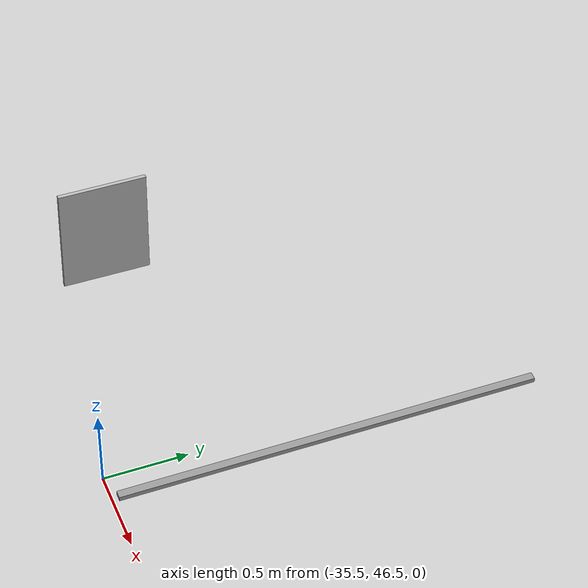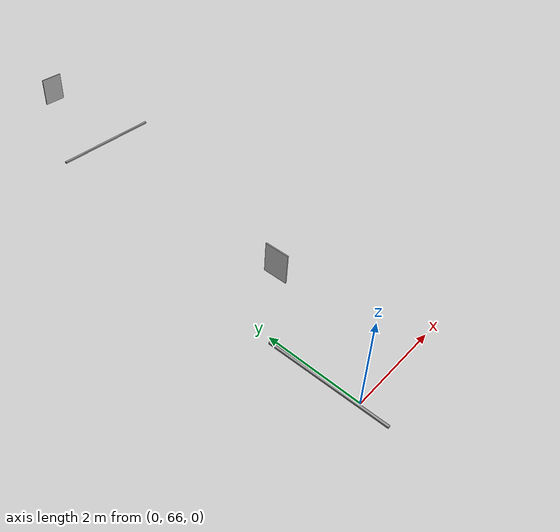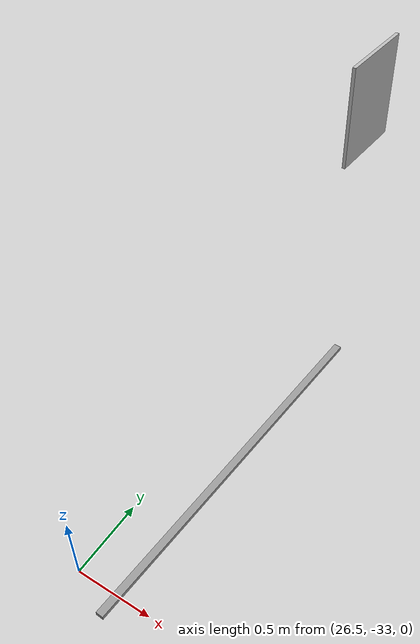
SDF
<sdf version="1.7">
 <world name="default">
  <light name="sun" type="directional">
   <pose>0 0 10 0 -0 0</pose>
   <diffuse>0.8 0.8 0.8 1</diffuse>
   <specular>0.2 0.2 0.2 1</specular>
   <attenuation>
    <range>1000</range>
    <constant>0.9</constant>
    <linear>0.01</linear>
    <quadratic>0.001</quadratic>
   </attenuation>
   <direction>-0.5 0.1 -0.9</direction>
   <spot><inner_angle>0</inner_angle><outer_angle>0</outer_angle><falloff>0</falloff></spot>
  </light>
  <model name="ground_plane">
   <static>1</static>
   <link name="link">
    <collision name="collision">
     <geometry><plane><normal>0 0 1</normal><size>100 100</size></plane></geometry>
     <surface><friction><ode><mu>100</mu><mu2>50</mu2></ode></friction></surface>
    </collision>
    <visual name="visual">
     <cast_shadows>0</cast_shadows>
     <geometry><plane><normal>0 0 1</normal><size>100 100</size></plane></geometry>
     <material>
      <script><uri>file://media/materials/scripts/gazebo.material</uri><name>Gazebo/Grey</name></script>
     </material>
    </visual>
   </link>
  </model>
  <gravity>0 0 -9.8</gravity>
  <magnetic_field>6e-06 2.3e-05 -4.2e-05</magnetic_field>
  <atmosphere type="adiabatic"/>
  <physics type="ode">
   <max_step_size>0.001</max_step_size>
   <real_time_factor>1</real_time_factor>
   <real_time_update_rate>1000</real_time_update_rate>
  </physics>
  <scene><ambient>0.4 0.4 0.4 1</ambient><background>0.7 0.7 0.7 1</background><shadows>1</shadows></scene>
  <audio><device>default</device></audio>
  <spherical_coordinates>
   <surface_model>EARTH_WGS84</surface_model>
   <latitude_deg>0</latitude_deg>
   <longitude_deg>0</longitude_deg>
   <elevation>0</elevation>
   <heading_deg>0</heading_deg>
  </spherical_coordinates>
  <model name="sign_board_turn">
   <link name="link_0">
    <inertial>
     <mass>1</mass>
     <inertia>
      <ixx>0.166667</ixx>
      <ixy>0</ixy>
      <ixz>0</ixz>
      <iyy>0.166667</iyy>
      <iyz>0</iyz>
      <izz>0.166667</izz>
     </inertia>
    </inertial>
    <pose>-0.022706 -0.007463 0 1.5708 -0.00111 1.56593</pose>
    <visual name="visual">
     <geometry><mesh><uri>model://sign_board_turn/meshes/sign_stand.obj</uri><scale>1 1 1</scale></mesh></geometry>
     <material>
      <lighting>1</lighting>
      <script><uri>file://media/materials/scripts/gazebo.material</uri><name>Gazebo/Grey</name></script>
      <shader type="pixel"/>
      <emissive>0 0 0 1</emissive>
     </material>
    </visual>
    <collision name="collision">
     <geometry><mesh><uri>model://sign_board_turn/meshes/sign_stand.obj</uri><scale>1 1 1</scale></mesh></geometry>
     <surface>
      <friction>
       <ode><mu>1</mu><mu2>1</mu2><fdir1>0 0 0</fdir1><slip1>0</slip1><slip2>0</slip2></ode>
       <torsional>
        <coefficient>1</coefficient>
        <patch_radius>0</patch_radius>
        <surface_radius>0</surface_radius>
        <use_patch_radius>1</use_patch_radius>
        <ode><slip>0</slip></ode>
       </torsional>
      </friction>
      <bounce><restitution_coefficient>0</restitution_coefficient><threshold>1e+06</threshold></bounce>
      <contact>
       <collide_without_contact>0</collide_without_contact>
       <collide_without_contact_bitmask>1</collide_without_contact_bitmask>
       <collide_bitmask>1</collide_bitmask>
       <ode>
        <soft_cfm>0</soft_cfm>
        <soft_erp>0.2</soft_erp>
        <kp>1e+13</kp>
        <kd>1</kd>
        <max_vel>0.01</max_vel>
        <min_depth>0</min_depth>
       </ode>
       <bullet>
        <split_impulse>1</split_impulse>
        <split_impulse_penetration_threshold>-0.01</split_impulse_penetration_threshold>
        <soft_cfm>0</soft_cfm>
        <soft_erp>0.2</soft_erp>
        <kp>1e+13</kp>
        <kd>1</kd>
       </bullet>
      </contact>
     </surface>
    </collision>
   </link>
   <link name="link_1">
    <inertial>
     <mass>1</mass>
     <inertia>
      <ixx>0.166667</ixx>
      <ixy>0</ixy>
      <ixz>0</ixz>
      <iyy>0.166667</iyy>
      <iyz>0</iyz>
      <izz>0.166667</izz>
     </inertia>
    </inertial>
    <pose>0.022706 0.007463 2 -0 1.55484 3.14</pose>
    <visual name="visual">
     <geometry><mesh><uri>model://sign_board_turn/meshes/sign_board.obj</uri><scale>1 1 1</scale></mesh></geometry>
     <material>
      <script>
       <uri>model://sign_board_turn/materials/scripts</uri>
       <uri>model://sign_board_turn/materials/textures</uri>
       <name>sign_board_turn/Diffuse</name>
      </script>
     </material>
    </visual>
    <collision name="collision">
     <geometry><mesh><uri>model://sign_board_turn/meshes/sign_board.obj</uri><scale>1 1 1</scale></mesh></geometry>
     <surface>
      <friction>
       <ode><mu>1</mu><mu2>1</mu2><fdir1>0 0 0</fdir1><slip1>0</slip1><slip2>0</slip2></ode>
       <torsional>
        <coefficient>1</coefficient>
        <patch_radius>0</patch_radius>
        <surface_radius>0</surface_radius>
        <use_patch_radius>1</use_patch_radius>
        <ode><slip>0</slip></ode>
       </torsional>
      </friction>
      <bounce><restitution_coefficient>0</restitution_coefficient><threshold>1e+06</threshold></bounce>
      <contact>
       <collide_without_contact>0</collide_without_contact>
       <collide_without_contact_bitmask>1</collide_without_contact_bitmask>
       <collide_bitmask>1</collide_bitmask>
       <ode>
        <soft_cfm>0</soft_cfm>
        <soft_erp>0.2</soft_erp>
        <kp>1e+13</kp>
        <kd>1</kd>
        <max_vel>0.01</max_vel>
        <min_depth>0</min_depth>
       </ode>
       <bullet>
        <split_impulse>1</split_impulse>
        <split_impulse_penetration_threshold>-0.01</split_impulse_penetration_threshold>
        <soft_cfm>0</soft_cfm>
        <soft_erp>0.2</soft_erp>
        <kp>1e+13</kp>
        <kd>1</kd>
       </bullet>
      </contact>
     </surface>
    </collision>
   </link>
   <joint name="link_0_JOINT_0" type="fixed">
    <parent>link_0</parent>
    <child>link_1</child>
    <physics>
     <ode><limit><cfm>0</cfm><erp>0.2</erp></limit><suspension><cfm>0</cfm><erp>0.2</erp></suspension></ode>
    </physics>
   </joint>
   <static>1</static>
   <pose>-0.074487 67.8951 -0 0 0 -1.54827</pose>
  </model>
  <model name="sign_board_30">
   <link name="link_0">
    <inertial>
     <mass>1</mass>
     <inertia>
      <ixx>0.166667</ixx>
      <ixy>0</ixy>
      <ixz>0</ixz>
      <iyy>0.166667</iyy>
      <iyz>0</iyz>
      <izz>0.166667</izz>
     </inertia>
    </inertial>
    <pose>-0.022706 -0.007463 0 1.5708 -0.00111 1.56593</pose>
    <visual name="visual">
     <geometry><mesh><uri>model://sign_board_30/meshes/sign_stand.obj</uri><scale>1 1 1</scale></mesh></geometry>
     <material>
      <lighting>1</lighting>
      <script><uri>file://media/materials/scripts/gazebo.material</uri><name>Gazebo/Grey</name></script>
      <shader type="pixel"/>
      <emissive>0 0 0 1</emissive>
     </material>
    </visual>
    <collision name="collision">
     <geometry><mesh><uri>model://sign_board_30/meshes/sign_stand.obj</uri><scale>1 1 1</scale></mesh></geometry>
     <surface>
      <friction>
       <ode><mu>1</mu><mu2>1</mu2><fdir1>0 0 0</fdir1><slip1>0</slip1><slip2>0</slip2></ode>
       <torsional>
        <coefficient>1</coefficient>
        <patch_radius>0</patch_radius>
        <surface_radius>0</surface_radius>
        <use_patch_radius>1</use_patch_radius>
        <ode><slip>0</slip></ode>
       </torsional>
      </friction>
      <bounce><restitution_coefficient>0</restitution_coefficient><threshold>1e+06</threshold></bounce>
      <contact>
       <collide_without_contact>0</collide_without_contact>
       <collide_without_contact_bitmask>1</collide_without_contact_bitmask>
       <collide_bitmask>1</collide_bitmask>
       <ode>
        <soft_cfm>0</soft_cfm>
        <soft_erp>0.2</soft_erp>
        <kp>1e+13</kp>
        <kd>1</kd>
        <max_vel>0.01</max_vel>
        <min_depth>0</min_depth>
       </ode>
       <bullet>
        <split_impulse>1</split_impulse>
        <split_impulse_penetration_threshold>-0.01</split_impulse_penetration_threshold>
        <soft_cfm>0</soft_cfm>
        <soft_erp>0.2</soft_erp>
        <kp>1e+13</kp>
        <kd>1</kd>
       </bullet>
      </contact>
     </surface>
    </collision>
   </link>
   <link name="link_1">
    <inertial>
     <mass>1</mass>
     <inertia>
      <ixx>0.166667</ixx>
      <ixy>0</ixy>
      <ixz>0</ixz>
      <iyy>0.166667</iyy>
      <iyz>0</iyz>
      <izz>0.166667</izz>
     </inertia>
    </inertial>
    <pose>0.022706 0.007463 2 -0 1.55484 3.14</pose>
    <visual name="visual">
     <geometry><mesh><uri>model://sign_board_30/meshes/sign_board.obj</uri><scale>1 1 1</scale></mesh></geometry>
     <material>
      <script>
       <uri>model://sign_board_30/materials/scripts</uri>
       <uri>model://sign_board_30/materials/textures</uri>
       <name>sign_board_30/Diffuse</name>
      </script>
     </material>
    </visual>
    <collision name="collision">
     <geometry><mesh><uri>model://sign_board_30/meshes/sign_board.obj</uri><scale>1 1 1</scale></mesh></geometry>
     <surface>
      <friction>
       <ode><mu>1</mu><mu2>1</mu2><fdir1>0 0 0</fdir1><slip1>0</slip1><slip2>0</slip2></ode>
       <torsional>
        <coefficient>1</coefficient>
        <patch_radius>0</patch_radius>
        <surface_radius>0</surface_radius>
        <use_patch_radius>1</use_patch_radius>
        <ode><slip>0</slip></ode>
       </torsional>
      </friction>
      <bounce><restitution_coefficient>0</restitution_coefficient><threshold>1e+06</threshold></bounce>
      <contact>
       <collide_without_contact>0</collide_without_contact>
       <collide_without_contact_bitmask>1</collide_without_contact_bitmask>
       <collide_bitmask>1</collide_bitmask>
       <ode>
        <soft_cfm>0</soft_cfm>
        <soft_erp>0.2</soft_erp>
        <kp>1e+13</kp>
        <kd>1</kd>
        <max_vel>0.01</max_vel>
        <min_depth>0</min_depth>
       </ode>
       <bullet>
        <split_impulse>1</split_impulse>
        <split_impulse_penetration_threshold>-0.01</split_impulse_penetration_threshold>
        <soft_cfm>0</soft_cfm>
        <soft_erp>0.2</soft_erp>
        <kp>1e+13</kp>
        <kd>1</kd>
       </bullet>
      </contact>
     </surface>
    </collision>
   </link>
   <joint name="link_0_JOINT_0" type="fixed">
    <parent>link_0</parent>
    <child>link_1</child>
    <physics>
     <ode><limit><cfm>0</cfm><erp>0.2</erp></limit><suspension><cfm>0</cfm><erp>0.2</erp></suspension></ode>
    </physics>
   </joint>
   <static>1</static>
   <pose>-35.3507 46.5593 0 0 -0 1.57439</pose>
  </model>
  <model name="sign_board_60">
   <link name="link_0">
    <inertial>
     <mass>1</mass>
     <inertia>
      <ixx>0.166667</ixx>
      <ixy>0</ixy>
      <ixz>0</ixz>
      <iyy>0.166667</iyy>
      <iyz>0</iyz>
      <izz>0.166667</izz>
     </inertia>
    </inertial>
    <pose>-0.022706 -0.007463 0 1.5708 -0.00111 1.56593</pose>
    <visual name="visual">
     <geometry><mesh><uri>model://sign_board_60/meshes/sign_stand.obj</uri><scale>1 1 1</scale></mesh></geometry>
     <material>
      <lighting>1</lighting>
      <script><uri>file://media/materials/scripts/gazebo.material</uri><name>Gazebo/Grey</name></script>
      <shader type="pixel"/>
      <emissive>0 0 0 1</emissive>
     </material>
    </visual>
    <collision name="collision">
     <geometry><mesh><uri>model://sign_board_60/meshes/sign_stand.obj</uri><scale>1 1 1</scale></mesh></geometry>
     <surface>
      <friction>
       <ode><mu>1</mu><mu2>1</mu2><fdir1>0 0 0</fdir1><slip1>0</slip1><slip2>0</slip2></ode>
       <torsional>
        <coefficient>1</coefficient>
        <patch_radius>0</patch_radius>
        <surface_radius>0</surface_radius>
        <use_patch_radius>1</use_patch_radius>
        <ode><slip>0</slip></ode>
       </torsional>
      </friction>
      <bounce><restitution_coefficient>0</restitution_coefficient><threshold>1e+06</threshold></bounce>
      <contact>
       <collide_without_contact>0</collide_without_contact>
       <collide_without_contact_bitmask>1</collide_without_contact_bitmask>
       <collide_bitmask>1</collide_bitmask>
       <ode>
        <soft_cfm>0</soft_cfm>
        <soft_erp>0.2</soft_erp>
        <kp>1e+13</kp>
        <kd>1</kd>
        <max_vel>0.01</max_vel>
        <min_depth>0</min_depth>
       </ode>
       <bullet>
        <split_impulse>1</split_impulse>
        <split_impulse_penetration_threshold>-0.01</split_impulse_penetration_threshold>
        <soft_cfm>0</soft_cfm>
        <soft_erp>0.2</soft_erp>
        <kp>1e+13</kp>
        <kd>1</kd>
       </bullet>
      </contact>
     </surface>
    </collision>
   </link>
   <link name="link_1">
    <inertial>
     <mass>1</mass>
     <inertia>
      <ixx>0.166667</ixx>
      <ixy>0</ixy>
      <ixz>0</ixz>
      <iyy>0.166667</iyy>
      <iyz>0</iyz>
      <izz>0.166667</izz>
     </inertia>
    </inertial>
    <pose>0.022706 0.007463 2 -0 1.55484 3.14</pose>
    <visual name="visual">
     <geometry><mesh><uri>model://sign_board_60/meshes/sign_board.obj</uri><scale>1 1 1</scale></mesh></geometry>
     <material>
      <script>
       <uri>model://sign_board_60/materials/scripts</uri>
       <uri>model://sign_board_60/materials/textures</uri>
       <name>sign_board_60/Diffuse</name>
      </script>
     </material>
    </visual>
    <collision name="collision">
     <geometry><mesh><uri>model://sign_board_60/meshes/sign_board.obj</uri><scale>1 1 1</scale></mesh></geometry>
     <surface>
      <friction>
       <ode><mu>1</mu><mu2>1</mu2><fdir1>0 0 0</fdir1><slip1>0</slip1><slip2>0</slip2></ode>
       <torsional>
        <coefficient>1</coefficient>
        <patch_radius>0</patch_radius>
        <surface_radius>0</surface_radius>
        <use_patch_radius>1</use_patch_radius>
        <ode><slip>0</slip></ode>
       </torsional>
      </friction>
      <bounce><restitution_coefficient>0</restitution_coefficient><threshold>1e+06</threshold></bounce>
      <contact>
       <collide_without_contact>0</collide_without_contact>
       <collide_without_contact_bitmask>1</collide_without_contact_bitmask>
       <collide_bitmask>1</collide_bitmask>
       <ode>
        <soft_cfm>0</soft_cfm>
        <soft_erp>0.2</soft_erp>
        <kp>1e+13</kp>
        <kd>1</kd>
        <max_vel>0.01</max_vel>
        <min_depth>0</min_depth>
       </ode>
       <bullet>
        <split_impulse>1</split_impulse>
        <split_impulse_penetration_threshold>-0.01</split_impulse_penetration_threshold>
        <soft_cfm>0</soft_cfm>
        <soft_erp>0.2</soft_erp>
        <kp>1e+13</kp>
        <kd>1</kd>
       </bullet>
      </contact>
     </surface>
    </collision>
   </link>
   <joint name="link_0_JOINT_0" type="fixed">
    <parent>link_0</parent>
    <child>link_1</child>
    <physics>
     <ode><limit><cfm>0</cfm><erp>0.2</erp></limit><suspension><cfm>0</cfm><erp>0.2</erp></suspension></ode>
    </physics>
   </joint>
   <static>1</static>
   <pose>-35.3424 -1.34353 0 0 -0 1.51436</pose>
  </model>
  <model name="sign_board_90">
   <link name="link_0">
    <inertial>
     <mass>1</mass>
     <inertia>
      <ixx>0.166667</ixx>
      <ixy>0</ixy>
      <ixz>0</ixz>
      <iyy>0.166667</iyy>
      <iyz>0</iyz>
      <izz>0.166667</izz>
     </inertia>
    </inertial>
    <pose>-0.022706 -0.007463 0 1.5708 -0.00111 1.56593</pose>
    <visual name="visual">
     <geometry><mesh><uri>model://sign_board_90/meshes/sign_stand.obj</uri><scale>1 1 1</scale></mesh></geometry>
     <material>
      <lighting>1</lighting>
      <script><uri>file://media/materials/scripts/gazebo.material</uri><name>Gazebo/Grey</name></script>
      <shader type="pixel"/>
      <emissive>0 0 0 1</emissive>
     </material>
    </visual>
    <collision name="collision">
     <geometry><mesh><uri>model://sign_board_90/meshes/sign_stand.obj</uri><scale>1 1 1</scale></mesh></geometry>
     <surface>
      <friction>
       <ode><mu>1</mu><mu2>1</mu2><fdir1>0 0 0</fdir1><slip1>0</slip1><slip2>0</slip2></ode>
       <torsional>
        <coefficient>1</coefficient>
        <patch_radius>0</patch_radius>
        <surface_radius>0</surface_radius>
        <use_patch_radius>1</use_patch_radius>
        <ode><slip>0</slip></ode>
       </torsional>
      </friction>
      <bounce><restitution_coefficient>0</restitution_coefficient><threshold>1e+06</threshold></bounce>
      <contact>
       <collide_without_contact>0</collide_without_contact>
       <collide_without_contact_bitmask>1</collide_without_contact_bitmask>
       <collide_bitmask>1</collide_bitmask>
       <ode>
        <soft_cfm>0</soft_cfm>
        <soft_erp>0.2</soft_erp>
        <kp>1e+13</kp>
        <kd>1</kd>
        <max_vel>0.01</max_vel>
        <min_depth>0</min_depth>
       </ode>
       <bullet>
        <split_impulse>1</split_impulse>
        <split_impulse_penetration_threshold>-0.01</split_impulse_penetration_threshold>
        <soft_cfm>0</soft_cfm>
        <soft_erp>0.2</soft_erp>
        <kp>1e+13</kp>
        <kd>1</kd>
       </bullet>
      </contact>
     </surface>
    </collision>
   </link>
   <link name="link_1">
    <inertial>
     <mass>1</mass>
     <inertia>
      <ixx>0.166667</ixx>
      <ixy>0</ixy>
      <ixz>0</ixz>
      <iyy>0.166667</iyy>
      <iyz>0</iyz>
      <izz>0.166667</izz>
     </inertia>
    </inertial>
    <pose>0.022706 0.007463 2 -0 1.55484 3.14</pose>
    <visual name="visual">
     <geometry><mesh><uri>model://sign_board_90/meshes/sign_board.obj</uri><scale>1 1 1</scale></mesh></geometry>
     <material>
      <script>
       <uri>model://sign_board_90/materials/scripts</uri>
       <uri>model://sign_board_90/materials/textures</uri>
       <name>sign_board_90/Diffuse</name>
      </script>
     </material>
    </visual>
    <collision name="collision">
     <geometry><mesh><uri>model://sign_board_90/meshes/sign_board.obj</uri><scale>1 1 1</scale></mesh></geometry>
     <surface>
      <friction>
       <ode><mu>1</mu><mu2>1</mu2><fdir1>0 0 0</fdir1><slip1>0</slip1><slip2>0</slip2></ode>
       <torsional>
        <coefficient>1</coefficient>
        <patch_radius>0</patch_radius>
        <surface_radius>0</surface_radius>
        <use_patch_radius>1</use_patch_radius>
        <ode><slip>0</slip></ode>
       </torsional>
      </friction>
      <bounce><restitution_coefficient>0</restitution_coefficient><threshold>1e+06</threshold></bounce>
      <contact>
       <collide_without_contact>0</collide_without_contact>
       <collide_without_contact_bitmask>1</collide_without_contact_bitmask>
       <collide_bitmask>1</collide_bitmask>
       <ode>
        <soft_cfm>0</soft_cfm>
        <soft_erp>0.2</soft_erp>
        <kp>1e+13</kp>
        <kd>1</kd>
        <max_vel>0.01</max_vel>
        <min_depth>0</min_depth>
       </ode>
       <bullet>
        <split_impulse>1</split_impulse>
        <split_impulse_penetration_threshold>-0.01</split_impulse_penetration_threshold>
        <soft_cfm>0</soft_cfm>
        <soft_erp>0.2</soft_erp>
        <kp>1e+13</kp>
        <kd>1</kd>
       </bullet>
      </contact>
     </surface>
    </collision>
   </link>
   <joint name="link_0_JOINT_0" type="fixed">
    <parent>link_0</parent>
    <child>link_1</child>
    <physics>
     <ode><limit><cfm>0</cfm><erp>0.2</erp></limit><suspension><cfm>0</cfm><erp>0.2</erp></suspension></ode>
    </physics>
   </joint>
   <static>1</static>
   <pose>26.927 -30.6742 0 0 0 -1.62643</pose>
  </model>
  <model name="sign_board_stop">
   <link name="link_0">
    <inertial>
     <mass>1</mass>
     <inertia>
      <ixx>0.166667</ixx>
      <ixy>0</ixy>
      <ixz>0</ixz>
      <iyy>0.166667</iyy>
      <iyz>0</iyz>
      <izz>0.166667</izz>
     </inertia>
    </inertial>
    <pose>-0.022706 -0.007463 0 1.5708 -0.00111 1.56593</pose>
    <visual name="visual">
     <geometry><mesh><uri>model://sign_board_stop/meshes/sign_stand.obj</uri><scale>1 1 1</scale></mesh></geometry>
     <material>
      <lighting>1</lighting>
      <script><uri>file://media/materials/scripts/gazebo.material</uri><name>Gazebo/Grey</name></script>
      <shader type="pixel"/>
      <emissive>0 0 0 1</emissive>
     </material>
    </visual>
    <collision name="collision">
     <geometry><mesh><uri>model://sign_board_stop/meshes/sign_stand.obj</uri><scale>1 1 1</scale></mesh></geometry>
     <surface>
      <friction>
       <ode><mu>1</mu><mu2>1</mu2><fdir1>0 0 0</fdir1><slip1>0</slip1><slip2>0</slip2></ode>
       <torsional>
        <coefficient>1</coefficient>
        <patch_radius>0</patch_radius>
        <surface_radius>0</surface_radius>
        <use_patch_radius>1</use_patch_radius>
        <ode><slip>0</slip></ode>
       </torsional>
      </friction>
      <bounce><restitution_coefficient>0</restitution_coefficient><threshold>1e+06</threshold></bounce>
      <contact>
       <collide_without_contact>0</collide_without_contact>
       <collide_without_contact_bitmask>1</collide_without_contact_bitmask>
       <collide_bitmask>1</collide_bitmask>
       <ode>
        <soft_cfm>0</soft_cfm>
        <soft_erp>0.2</soft_erp>
        <kp>1e+13</kp>
        <kd>1</kd>
        <max_vel>0.01</max_vel>
        <min_depth>0</min_depth>
       </ode>
       <bullet>
        <split_impulse>1</split_impulse>
        <split_impulse_penetration_threshold>-0.01</split_impulse_penetration_threshold>
        <soft_cfm>0</soft_cfm>
        <soft_erp>0.2</soft_erp>
        <kp>1e+13</kp>
        <kd>1</kd>
       </bullet>
      </contact>
     </surface>
    </collision>
   </link>
   <link name="link_1">
    <inertial>
     <mass>1</mass>
     <inertia>
      <ixx>0.166667</ixx>
      <ixy>0</ixy>
      <ixz>0</ixz>
      <iyy>0.166667</iyy>
      <iyz>0</iyz>
      <izz>0.166667</izz>
     </inertia>
    </inertial>
    <pose>0.022706 0.007463 2 -0 1.55484 3.14</pose>
    <visual name="visual">
     <geometry><mesh><uri>model://sign_board_stop/meshes/sign_board.obj</uri><scale>1 1 1</scale></mesh></geometry>
     <material>
      <script>
       <uri>model://sign_board_stop/materials/scripts</uri>
       <uri>model://sign_board_stop/materials/textures</uri>
       <name>sign_board_stop/Diffuse</name>
      </script>
     </material>
    </visual>
    <collision name="collision">
     <geometry><mesh><uri>model://sign_board_stop/meshes/sign_board.obj</uri><scale>1 1 1</scale></mesh></geometry>
     <surface>
      <friction>
       <ode><mu>1</mu><mu2>1</mu2><fdir1>0 0 0</fdir1><slip1>0</slip1><slip2>0</slip2></ode>
       <torsional>
        <coefficient>1</coefficient>
        <patch_radius>0</patch_radius>
        <surface_radius>0</surface_radius>
        <use_patch_radius>1</use_patch_radius>
        <ode><slip>0</slip></ode>
       </torsional>
      </friction>
      <bounce><restitution_coefficient>0</restitution_coefficient><threshold>1e+06</threshold></bounce>
      <contact>
       <collide_without_contact>0</collide_without_contact>
       <collide_without_contact_bitmask>1</collide_without_contact_bitmask>
       <collide_bitmask>1</collide_bitmask>
       <ode>
        <soft_cfm>0</soft_cfm>
        <soft_erp>0.2</soft_erp>
        <kp>1e+13</kp>
        <kd>1</kd>
        <max_vel>0.01</max_vel>
        <min_depth>0</min_depth>
       </ode>
       <bullet>
        <split_impulse>1</split_impulse>
        <split_impulse_penetration_threshold>-0.01</split_impulse_penetration_threshold>
        <soft_cfm>0</soft_cfm>
        <soft_erp>0.2</soft_erp>
        <kp>1e+13</kp>
        <kd>1</kd>
       </bullet>
      </contact>
     </surface>
    </collision>
   </link>
   <joint name="link_0_JOINT_0" type="fixed">
    <parent>link_0</parent>
    <child>link_1</child>
    <physics>
     <ode><limit><cfm>0</cfm><erp>0.2</erp></limit><suspension><cfm>0</cfm><erp>0.2</erp></suspension></ode>
    </physics>
   </joint>
   <static>1</static>
   <pose>0.638974 75.089 -0 0 -0 0</pose>
  </model>
 </world>
</sdf>
